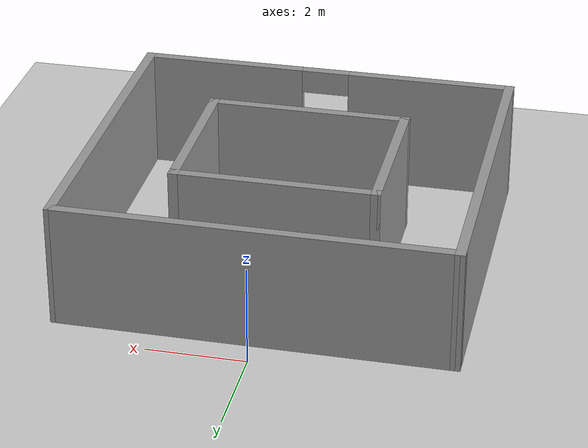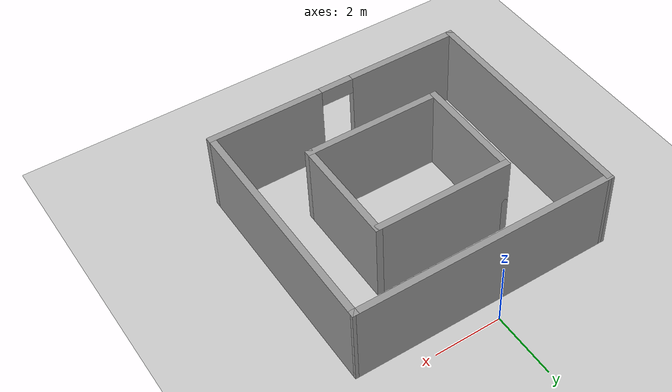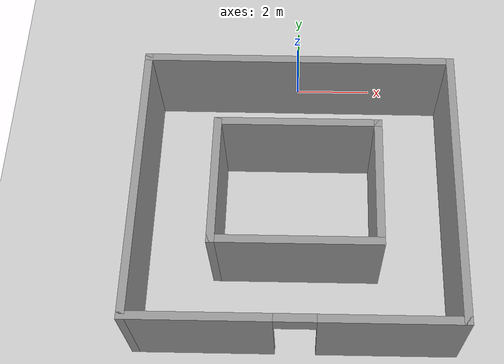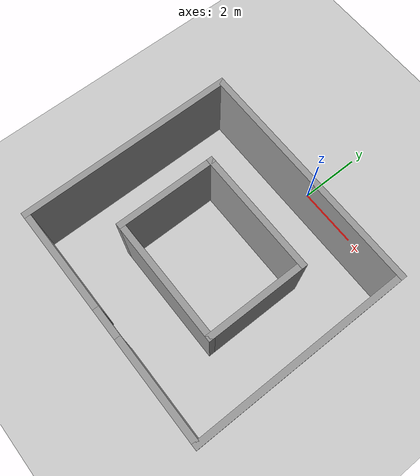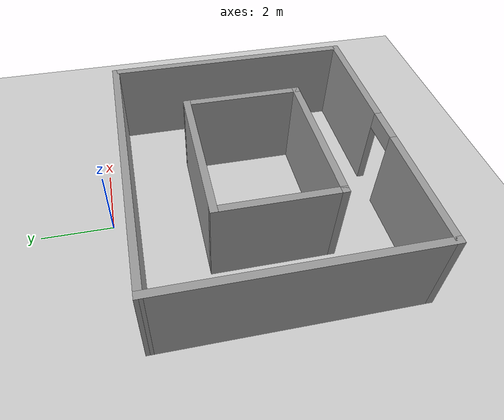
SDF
<sdf version="1.4">
 <world name="default">
  <light name="sun" type="directional">
   <pose>0 0 10 0 -0 0</pose>
   <diffuse>0.8 0.8 0.8 1</diffuse>
   <specular>0.2 0.2 0.2 1</specular>
   <attenuation>
    <range>1000</range>
    <constant>0.9</constant>
    <linear>0.01</linear>
    <quadratic>0.001</quadratic>
   </attenuation>
   <direction>-0.5 0.1 -0.9</direction>
  </light>
  <model name="ground_plane">
   <static>1</static>
   <link name="link">
    <collision name="collision">
     <geometry><plane><normal>0 0 1</normal><size>100 100</size></plane></geometry>
     <surface><friction><ode><mu>100</mu><mu2>50</mu2></ode></friction></surface>
    </collision>
    <visual name="visual">
     <cast_shadows>0</cast_shadows>
     <geometry><plane><normal>0 0 1</normal><size>100 100</size></plane></geometry>
     <material>
      <script><uri>file://media/materials/scripts/gazebo.material</uri><name>Gazebo/Grey</name></script>
     </material>
    </visual>
    <velocity_decay><linear>0</linear><angular>0</angular></velocity_decay>
   </link>
  </model>
  <physics type="ode">
   <max_step_size>0.001</max_step_size>
   <real_time_factor>1</real_time_factor>
   <real_time_update_rate>1000</real_time_update_rate>
   <gravity>0 0 -9.8</gravity>
  </physics>
  <scene><ambient>0.4 0.4 0.4 1</ambient><background>0.7 0.7 0.7 1</background><shadows>1</shadows></scene>
  <spherical_coordinates>
   <surface_model>EARTH_WGS84</surface_model>
   <latitude_deg>0</latitude_deg>
   <longitude_deg>0</longitude_deg>
   <elevation>0</elevation>
   <heading_deg>0</heading_deg>
  </spherical_coordinates>
  <model name="testtt">
   <link name="Wall_0">
    <collision name="Wall_0_Collision">
     <geometry><box><size>7.2 0.2 2.5</size></box></geometry>
     <pose>0 0 1.25 0 -0 0</pose>
    </collision>
    <visual name="Wall_0_Visual">
     <pose>0 0 1.25 0 -0 0</pose>
     <geometry><box><size>7.2 0.2 2.5</size></box></geometry>
     <material>
      <script><uri>file://media/materials/scripts/gazebo.material</uri><name>Gazebo/Grey</name></script>
     </material>
    </visual>
    <velocity_decay><linear>0</linear><angular>0</angular></velocity_decay>
    <pose>-3.85 -4.12 0 0 -0 1.5708</pose>
   </link>
   <link name="Wall_1">
    <collision name="Wall_1_Collision">
     <geometry><box><size>8.00001 0.2 2.5</size></box></geometry>
     <pose>0 0 1.25 0 -0 0</pose>
    </collision>
    <visual name="Wall_1_Visual">
     <pose>0 0 1.25 0 -0 0</pose>
     <geometry><box><size>8.00001 0.2 2.5</size></box></geometry>
     <material>
      <script><uri>file://media/materials/scripts/gazebo.material</uri><name>Gazebo/Grey</name></script>
     </material>
    </visual>
    <velocity_decay><linear>0</linear><angular>0</angular></velocity_decay>
    <pose>0.05 -0.6275 0 0 0 -0.001923</pose>
   </link>
   <link name="Wall_2">
    <collision name="Wall_2_Collision">
     <geometry><box><size>7.185 0.2 2.5</size></box></geometry>
     <pose>0 0 1.25 0 -0 0</pose>
    </collision>
    <visual name="Wall_2_Visual">
     <pose>0 0 1.25 0 -0 0</pose>
     <geometry><box><size>7.185 0.2 2.5</size></box></geometry>
     <material>
      <script><uri>file://media/materials/scripts/gazebo.material</uri><name>Gazebo/Grey</name></script>
     </material>
    </visual>
    <velocity_decay><linear>0</linear><angular>0</angular></velocity_decay>
    <pose>3.95 -4.1275 0 0 0 -1.5708</pose>
   </link>
   <link name="Wall_3">
    <pose>0.05 -7.62 0 0 -0 3.14159</pose>
    <visual name="Wall_3_Visual_0">
     <pose>-2.25992 0 1.25 0 -0 0</pose>
     <geometry><box><size>3.48016 0.2 2.5</size></box></geometry>
     <material>
      <script><uri>file://media/materials/scripts/gazebo.material</uri><name>Gazebo/Grey</name></script>
     </material>
    </visual>
    <collision name="Wall_3_Collision_0">
     <geometry><box><size>3.48016 0.2 2.5</size></box></geometry>
     <pose>-2.25992 0 1.25 0 -0 0</pose>
    </collision>
    <visual name="Wall_3_Visual_1">
     <pose>2.24008 0 1.25 0 -0 0</pose>
     <geometry><box><size>3.51985 0.2 2.5</size></box></geometry>
     <material>
      <script><uri>file://media/materials/scripts/gazebo.material</uri><name>Gazebo/Grey</name></script>
     </material>
    </visual>
    <collision name="Wall_3_Collision_1">
     <geometry><box><size>3.51985 0.2 2.5</size></box></geometry>
     <pose>2.24008 0 1.25 0 -0 0</pose>
    </collision>
    <visual name="Wall_3_Visual_2">
     <pose>-0.019844 0 2.25 0 -0 0</pose>
     <geometry><box><size>1 0.2 0.5</size></box></geometry>
     <material>
      <script><uri>file://media/materials/scripts/gazebo.material</uri><name>Gazebo/Grey</name></script>
     </material>
    </visual>
    <collision name="Wall_3_Collision_2">
     <geometry><box><size>1 0.2 0.5</size></box></geometry>
     <pose>-0.019844 0 2.25 0 -0 0</pose>
    </collision>
    <velocity_decay><linear>0</linear><angular>0</angular></velocity_decay>
   </link>
   <link name="Wall_5">
    <collision name="Wall_5_Collision">
     <geometry><box><size>3.4 0.2 2.5</size></box></geometry>
     <pose>0 0 1.25 0 -0 0</pose>
    </collision>
    <visual name="Wall_5_Visual">
     <pose>0 0 1.25 0 -0 0</pose>
     <geometry><box><size>3.4 0.2 2.5</size></box></geometry>
     <material>
      <script><uri>file://media/materials/scripts/gazebo.material</uri><name>Gazebo/Grey</name></script>
     </material>
    </visual>
    <velocity_decay><linear>0</linear><angular>0</angular></velocity_decay>
    <pose>-1.95 -4.12 0 0 -0 1.5708</pose>
   </link>
   <link name="Wall_6">
    <collision name="Wall_6_Collision">
     <geometry><box><size>4.2 0.2 2.5</size></box></geometry>
     <pose>0 0 1.25 0 -0 0</pose>
    </collision>
    <visual name="Wall_6_Visual">
     <pose>0 0 1.25 0 -0 0</pose>
     <geometry><box><size>4.2 0.2 2.5</size></box></geometry>
     <material>
      <script><uri>file://media/materials/scripts/gazebo.material</uri><name>Gazebo/Grey</name></script>
     </material>
    </visual>
    <velocity_decay><linear>0</linear><angular>0</angular></velocity_decay>
    <pose>0.05 -2.52 0 0 -0 0</pose>
   </link>
   <link name="Wall_7">
    <collision name="Wall_7_Collision">
     <geometry><box><size>3.4 0.2 2.5</size></box></geometry>
     <pose>0 0 1.25 0 -0 0</pose>
    </collision>
    <visual name="Wall_7_Visual">
     <pose>0 0 1.25 0 -0 0</pose>
     <geometry><box><size>3.4 0.2 2.5</size></box></geometry>
     <material>
      <script><uri>file://media/materials/scripts/gazebo.material</uri><name>Gazebo/Grey</name></script>
     </material>
    </visual>
    <velocity_decay><linear>0</linear><angular>0</angular></velocity_decay>
    <pose>2.05 -4.12 0 0 0 -1.5708</pose>
   </link>
   <link name="Wall_8">
    <collision name="Wall_8_Collision">
     <geometry><box><size>4.2 0.2 2.5</size></box></geometry>
     <pose>0 0 1.25 0 -0 0</pose>
    </collision>
    <visual name="Wall_8_Visual">
     <pose>0 0 1.25 0 -0 0</pose>
     <geometry><box><size>4.2 0.2 2.5</size></box></geometry>
     <material>
      <script><uri>file://media/materials/scripts/gazebo.material</uri><name>Gazebo/Grey</name></script>
     </material>
    </visual>
    <velocity_decay><linear>0</linear><angular>0</angular></velocity_decay>
    <pose>0.05 -5.72 0 0 -0 3.14159</pose>
   </link>
   <static>1</static>
  </model>
 </world>
</sdf>
